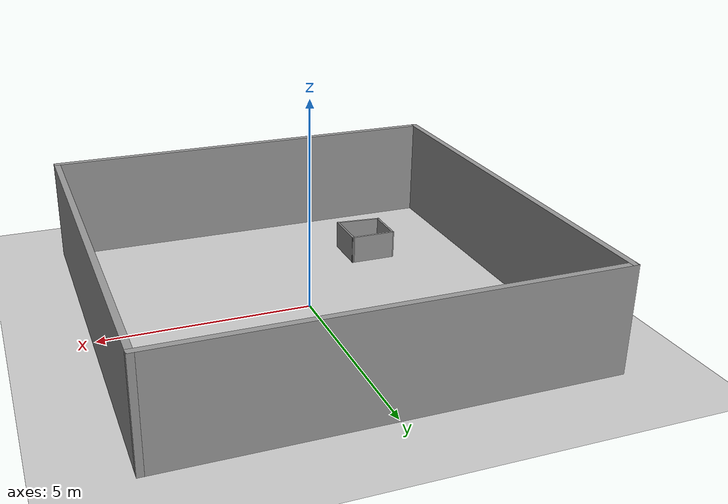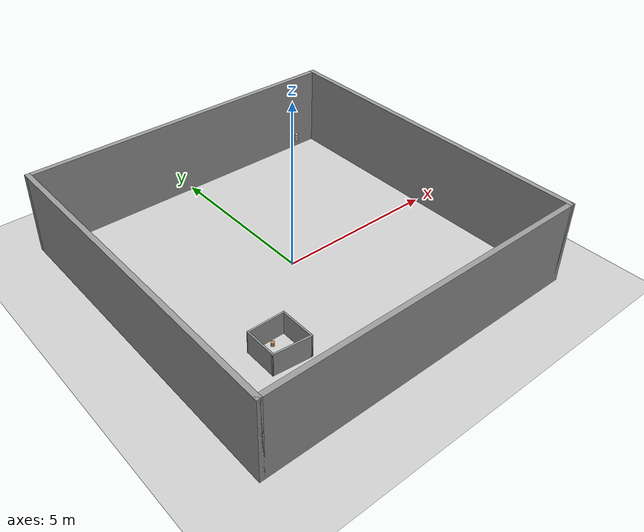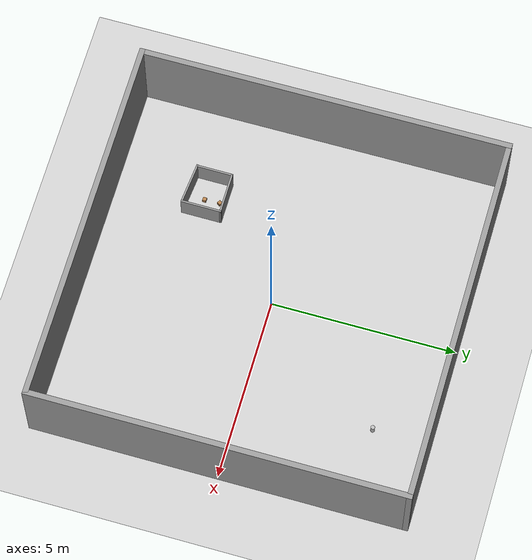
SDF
<sdf version="1.6">
 <world name="default">
  <model name="ground_plane">
   <static>1</static>
   <link name="link">
    <collision name="collision">
     <geometry><plane><normal>0 0 1</normal><size>100 100</size></plane></geometry>
     <surface><friction><ode><mu>100</mu><mu2>50</mu2></ode></friction></surface>
    </collision>
    <visual name="visual">
     <cast_shadows>0</cast_shadows>
     <geometry><plane><normal>0 0 1</normal><size>100 100</size></plane></geometry>
     <material>
      <script><uri>file://media/materials/scripts/gazebo.material</uri><name>Gazebo/Grey</name></script>
     </material>
    </visual>
   </link>
  </model>
  <model name="Untitled">
   <link name="Wall_0">
    <collision name="Wall_0_Collision">
     <geometry><box><size>10.15 0.15 2.5</size></box></geometry>
     <pose>0 0 1.25 0 -0 0</pose>
    </collision>
    <visual name="Wall_0_Visual">
     <pose>0 0 1.25 0 -0 0</pose>
     <geometry><box><size>10.15 0.15 2.5</size></box></geometry>
     <material>
      <script><uri>file://media/materials/scripts/gazebo.material</uri><name>Gazebo/Grey</name></script>
      <ambient>1 1 1 1</ambient>
     </material>
     <meta><layer>0</layer></meta>
    </visual>
    <pose>5 0 0 0 -0 1.5708</pose>
   </link>
   <link name="Wall_3">
    <collision name="Wall_3_Collision">
     <geometry><box><size>10.15 0.15 2.5</size></box></geometry>
     <pose>0 0 1.25 0 -0 0</pose>
    </collision>
    <visual name="Wall_3_Visual">
     <pose>0 0 1.25 0 -0 0</pose>
     <geometry><box><size>10.15 0.15 2.5</size></box></geometry>
     <material>
      <script><uri>file://media/materials/scripts/gazebo.material</uri><name>Gazebo/Grey</name></script>
      <ambient>1 1 1 1</ambient>
     </material>
     <meta><layer>0</layer></meta>
    </visual>
    <pose>0 5 0 0 -0 3.14159</pose>
   </link>
   <link name="Wall_7">
    <collision name="Wall_7_Collision">
     <geometry><box><size>10.15 0.15 2.5</size></box></geometry>
     <pose>0 0 1.25 0 -0 0</pose>
    </collision>
    <visual name="Wall_7_Visual">
     <pose>0 0 1.25 0 -0 0</pose>
     <geometry><box><size>10.15 0.15 2.5</size></box></geometry>
     <material>
      <script><uri>file://media/materials/scripts/gazebo.material</uri><name>Gazebo/Grey</name></script>
      <ambient>1 1 1 1</ambient>
     </material>
     <meta><layer>0</layer></meta>
    </visual>
    <pose>-5 0 0 0 -0 -1.5708</pose>
   </link>
   <link name="Wall_9">
    <collision name="Wall_9_Collision">
     <geometry><box><size>10.15 0.15 2.5</size></box></geometry>
     <pose>0 0 1.25 0 -0 0</pose>
    </collision>
    <visual name="Wall_9_Visual">
     <pose>0 0 1.25 0 -0 0</pose>
     <geometry><box><size>10.15 0.15 2.5</size></box></geometry>
     <material>
      <script><uri>file://media/materials/scripts/gazebo.material</uri><name>Gazebo/Grey</name></script>
      <ambient>1 1 1 1</ambient>
     </material>
     <meta><layer>0</layer></meta>
    </visual>
    <pose>0 -5 0 0 -0 0</pose>
   </link>
   <static>1</static>
  </model>
  <model name="Untitled_0">
   <pose>-2.45722 -2.4934 0 0 -0 0</pose>
   <link name="Wall_11">
    <collision name="Wall_11_Collision">
     <geometry><box><size>1.01485 0.05 0.7</size></box></geometry>
     <pose>0 0 0.35 0 -0 0</pose>
    </collision>
    <visual name="Wall_11_Visual">
     <pose>0 0 0.35 0 -0 0</pose>
     <geometry><box><size>1.01485 0.05 0.7</size></box></geometry>
     <material>
      <script><uri>file://media/materials/scripts/gazebo.material</uri><name>Gazebo/Grey</name></script>
      <ambient>1 1 1 1</ambient>
     </material>
     <meta><layer>0</layer></meta>
    </visual>
    <pose>-0.545174 0.051007 0 0 -0 1.56583</pose>
   </link>
   <link name="Wall_13">
    <collision name="Wall_13_Collision">
     <geometry><box><size>1.15 0.05 0.7</size></box></geometry>
     <pose>0 0 0.35 0 -0 0</pose>
    </collision>
    <visual name="Wall_13_Visual">
     <pose>0 0 0.35 0 -0 0</pose>
     <geometry><box><size>1.15 0.05 0.7</size></box></geometry>
     <material>
      <script><uri>file://media/materials/scripts/gazebo.material</uri><name>Gazebo/Grey</name></script>
      <ambient>1 1 1 1</ambient>
     </material>
     <meta><layer>0</layer></meta>
    </visual>
    <pose>0.007222 0.533403 0 0 -0 0</pose>
   </link>
   <link name="Wall_14">
    <collision name="Wall_14_Collision">
     <geometry><box><size>1.11484 0.05 0.7</size></box></geometry>
     <pose>0 0 0.35 0 -0 0</pose>
    </collision>
    <visual name="Wall_14_Visual">
     <pose>0 0 0.35 0 -0 0</pose>
     <geometry><box><size>1.11484 0.05 0.7</size></box></geometry>
     <material>
      <script><uri>file://media/materials/scripts/gazebo.material</uri><name>Gazebo/Grey</name></script>
      <ambient>1 1 1 1</ambient>
     </material>
     <meta><layer>0</layer></meta>
    </visual>
    <pose>0.554826 0.001007 0 0 -0 -1.5753</pose>
   </link>
   <link name="Wall_15">
    <collision name="Wall_15_Collision">
     <geometry><box><size>1.15454 0.05 0.7</size></box></geometry>
     <pose>0 0 0.35 0 -0 0</pose>
    </collision>
    <visual name="Wall_15_Visual">
     <pose>0 0 0.35 0 -0 0</pose>
     <geometry><box><size>1.15454 0.05 0.7</size></box></geometry>
     <material>
      <script><uri>file://media/materials/scripts/gazebo.material</uri><name>Gazebo/Grey</name></script>
      <ambient>1 1 1 1</ambient>
     </material>
     <meta><layer>0</layer></meta>
    </visual>
    <pose>-0.005174 -0.481388 0 0 -0 3.05093</pose>
   </link>
   <static>1</static>
  </model>
  <model name="wood_cube_10cm_0">
   <link name="link">
    <pose>0 0 0.05 0 -0 0</pose>
    <inertial>
     <mass>0.5167</mass>
     <inertia>
      <ixx>0.000861167</ixx>
      <ixy>0</ixy>
      <ixz>0</ixz>
      <iyy>0.000861167</iyy>
      <iyz>0</iyz>
      <izz>0.000861167</izz>
     </inertia>
    </inertial>
    <collision name="collision">
     <geometry><box><size>0.1 0.1 0.1</size></box></geometry>
     <surface>
      <contact>
       <poissons_ratio>0.347</poissons_ratio>
       <elastic_modulus>8.8e+09</elastic_modulus>
       <ode><kp>100000</kp><kd>100</kd><max_vel>100</max_vel><min_depth>0.001</min_depth></ode>
      </contact>
      <friction>
       <torsional>
        <coefficient>1</coefficient>
        <use_patch_radius>0</use_patch_radius>
        <surface_radius>0.01</surface_radius>
       </torsional>
      </friction>
     </surface>
    </collision>
    <visual name="visual">
     <geometry><box><size>0.1 0.1 0.1</size></box></geometry>
     <material>
      <script><uri>file://media/materials/scripts/gazebo.material</uri><name>Gazebo/Wood</name></script>
     </material>
    </visual>
   </link>
   <pose>-2.36297 -2.08799 0.048987 -1.5708 0 2.49768</pose>
  </model>
  <model name="wood_block_10_2_1cm">
   <link name="link">
    <pose>0 0 0.005 0 -0 0</pose>
    <inertial>
     <mass>0.0125</mass>
     <inertia>
      <ixx>7.55208e-07</ixx>
      <ixy>0</ixy>
      <ixz>0</ixz>
      <iyy>1.05208e-05</iyy>
      <iyz>0</iyz>
      <izz>1.10677e-05</izz>
     </inertia>
    </inertial>
    <collision name="collision">
     <geometry><box><size>0.1 0.025 0.01</size></box></geometry>
     <surface>
      <contact>
       <poissons_ratio>0.347</poissons_ratio>
       <elastic_modulus>8.8e+09</elastic_modulus>
       <ode><kp>100000</kp><kd>1</kd><max_vel>1</max_vel><min_depth>0.001</min_depth></ode>
      </contact>
      <friction>
       <torsional>
        <coefficient>1</coefficient>
        <use_patch_radius>0</use_patch_radius>
        <surface_radius>0.05</surface_radius>
       </torsional>
      </friction>
     </surface>
    </collision>
    <visual name="visual">
     <geometry><box><size>0.1 0.025 0.01</size></box></geometry>
     <material>
      <script><uri>file://media/materials/scripts/gazebo.material</uri><name>Gazebo/Wood</name></script>
     </material>
    </visual>
   </link>
  </model>
  <model name="wood_cube_10cm_2">
   <link name="link">
    <pose>0 0 0.05 0 -0 0</pose>
    <inertial>
     <mass>0.5167</mass>
     <inertia>
      <ixx>0.000861167</ixx>
      <ixy>0</ixy>
      <ixz>0</ixz>
      <iyy>0.000861167</iyy>
      <iyz>0</iyz>
      <izz>0.000861167</izz>
     </inertia>
    </inertial>
    <collision name="collision">
     <geometry><box><size>0.1 0.1 0.1</size></box></geometry>
     <surface>
      <contact>
       <poissons_ratio>0.347</poissons_ratio>
       <elastic_modulus>8.8e+09</elastic_modulus>
       <ode><kp>100000</kp><kd>100</kd><max_vel>100</max_vel><min_depth>0.001</min_depth></ode>
      </contact>
      <friction>
       <torsional>
        <coefficient>1</coefficient>
        <use_patch_radius>0</use_patch_radius>
        <surface_radius>0.01</surface_radius>
       </torsional>
      </friction>
     </surface>
    </collision>
    <visual name="visual">
     <geometry><box><size>0.1 0.1 0.1</size></box></geometry>
     <material>
      <script><uri>file://media/materials/scripts/gazebo.material</uri><name>Gazebo/Wood</name></script>
     </material>
    </visual>
   </link>
   <pose>-2.38294 -2.54757 -0.001013 2.5e-05 -1e-05 -0.061848</pose>
  </model>
  <model name="beer">
   <link name="link">
    <pose>0 0 0.115 0 -0 0</pose>
    <inertial>
     <mass>0.39</mass>
     <inertia><ixx>0.00058</ixx><ixy>0</ixy><ixz>0</ixz><iyy>0.00058</iyy><iyz>0</iyz><izz>0.00019</izz></inertia>
    </inertial>
    <collision name="collision">
     <geometry><cylinder><radius>0.055</radius><length>0.23</length></cylinder></geometry>
    </collision>
    <visual name="visual">
     <geometry><cylinder><radius>0.055</radius><length>0.23</length></cylinder></geometry>
     <material>
      <script>
       <uri>model://beer/materials/scripts</uri>
       <uri>model://beer/materials/textures</uri>
       <name>Beer/Diffuse</name>
      </script>
     </material>
    </visual>
   </link>
   <pose>3.11864 3.56856 1.19999 -1.3e-05 1e-05 -6.4e-05</pose>
  </model>
 </world>
</sdf>
